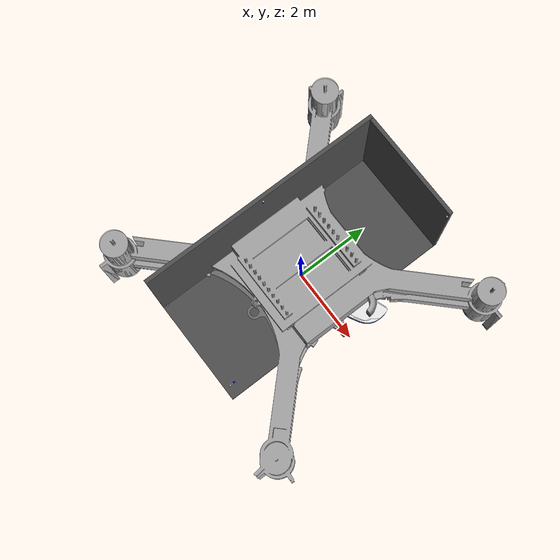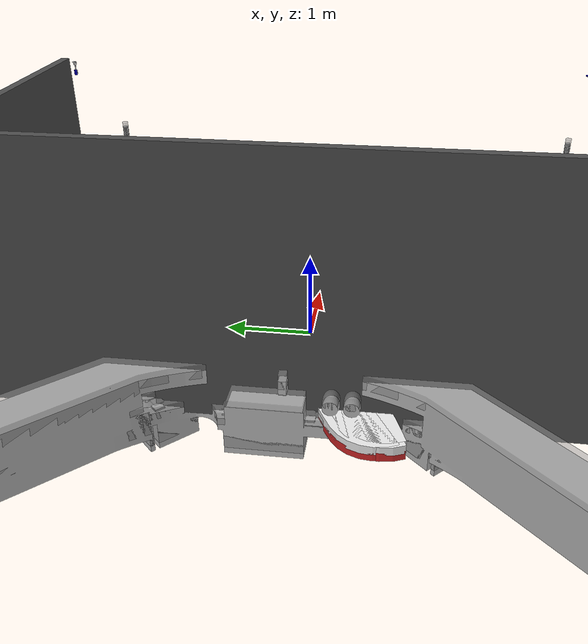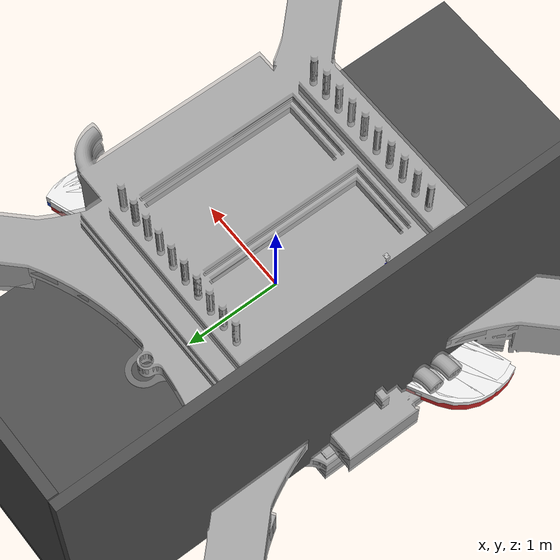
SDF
<?xml version="1.0" ?>
<sdf version="1.5">
  <world name="default">
    <!-- A global light source -->
    <include>
      <uri>model://sun</uri>
    </include>

    <!-- A ground plane -->

    <include>
      <uri>model://mur1</uri>
      <pose>0 0 -0.03 0 0 0</pose>
    </include>

    <!-- Set anchors for the room -->
    <!-- Noeud 0 -->
    <model name="noeud0">
      <pose>-1.4075 -3.145 0.15 0 0 -1.5707</pose>
      <include>
        <uri>model://anchor_stand</uri>
      </include>
    </model>

    <!-- Noeud 1 -->
    <model name="noeud1">
      <pose>-1.4375 3.155 0.15 0 0 3.1415</pose>
      <include>
        <uri>model://anchor_stand</uri>
      </include>
    </model>

    <!-- Noeud 2 -->
    <model name="noeud2">
      <pose>1.3875 0 0.15 0 0 0</pose>
      <include>
        <uri>model://anchor_stand</uri>
      </include>
    </model>

    <!-- Noeud 3 -->
    <model name="noeud3">
      <pose>1.5025 -3.145 2.76 -1.57 1.57 0</pose>
      <include>
        <uri>model://anchor_stand</uri>
      </include>
    </model>

    <!-- Noeud 4 -->
    <model name="noeud4">
      <pose>-1.41 -0.005 2.765 3.1415 0 -3.1415</pose>
      <include>
        <uri>model://anchor_stand</uri>
      </include>
    </model>

    <!-- Noeud 5 -->
    <model name="noeud5">
      <pose>1.4525 3.095 2.765 -3.1415 0 0</pose>
      <include>
        <uri>model://anchor_stand</uri>
      </include>
    </model>

    <!-- Add the crazylfies and the ghost -->
    <include>
      <pose>-1.51 0 1.35 0 1.57 0</pose>
      <uri>model://mur1</uri>
    </include>

    <include>
      <pose>0 3.2 1.35 1.57 0 0</pose>
      <uri>model://mur2</uri>
    </include>

    <include>
      <pose>0 0 0.03 0 0 0</pose>
      <uri>model://crazyflie_ghost1</uri>
    </include>

    <include>
      <pose>0 0 0.1 0 0 0</pose>
      <uri>model://crazyflie_ghost2</uri>
    </include>

    <physics name='default_physics' default='0' type='ode'>
      <gravity>0 0 -9.8066</gravity>
      <ode>
        <solver>
          <type>quick</type>
          <iters>1000</iters>
          <sor>1.3</sor>
          <use_dynamic_moi_rescaling>0</use_dynamic_moi_rescaling>
        </solver>
        <constraints>
          <cfm>0</cfm>
          <erp>0.2</erp>
          <contact_max_correcting_vel>100</contact_max_correcting_vel>
          <contact_surface_layer>0.001</contact_surface_layer>
        </constraints>
      </ode>
      <max_step_size>0.01</max_step_size>
      <real_time_factor>1</real_time_factor>
      <real_time_update_rate>100</real_time_update_rate>
      <magnetic_field>6.0e-6 2.3e-5 -4.2e-5</magnetic_field>
    </physics>
    <gui fullscreen='0'>
      <camera name='user_camera'>
        <pose>-1.489541 -7.484700 2.525153 0 0.207999 1.273996</pose>
      </camera>
    </gui>
  </world>
</sdf>

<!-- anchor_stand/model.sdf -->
<sdf version="1.5">
  <model name="anchor_stand">
    <static>true</static>
    <link name="link">
      <collision name="collision">
        <geometry>
          <box>
            <size>0.02 0.02 0.19</size>
          </box>
        </geometry>
      </collision>
      <visual name="visual">
        <geometry>
          <mesh>
            <uri>model://anchor_stand/meshes/anchor_stand.dae</uri>
          </mesh>
        </geometry>
      </visual>
    </link>
  </model>
</sdf>

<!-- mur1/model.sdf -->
<sdf version="1.5">
  <model name="mur1">
    <static>true</static>
    <link name="link">
      <collision name="collision">
        <geometry>
          <box>
            <size>2.9 6.5 0.1</size>
          </box>
        </geometry>
      </collision>
      <visual name="visual">
        <cast_shadows>false</cast_shadows>
        <geometry>
          <box>
            <size>2.9 6.5 0.1</size>
          </box>
        </geometry>
        <material>
          <script>
            <uri>model://asphalt_plane/materials/scripts</uri>
            <uri>model://asphalt_plane/materials/textures</uri>
            <name>vrc/asphalt</name>
          </script>
        </material>
      </visual>
    </link>
  </model>
</sdf>

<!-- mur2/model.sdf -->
<sdf version="1.5">
  <model name="mur2">
    <static>true</static>
    <link name="link">
      <collision name="collision">
        <geometry>
          <box>
            <size>2.9 2.9 0.1</size>
          </box>
        </geometry>
      </collision>
      <visual name="visual">
        <cast_shadows>false</cast_shadows>
        <geometry>
          <box>
            <size>2.9 2.9 0.1</size>
          </box>
        </geometry>
        <material>
          <script>
            <uri>model://asphalt_plane/materials/scripts</uri>
            <uri>model://asphalt_plane/materials/textures</uri>
            <name>vrc/asphalt</name>
          </script>
        </material>
      </visual>
    </link>
  </model>
</sdf>

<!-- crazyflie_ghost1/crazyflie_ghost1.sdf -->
<sdf version='1.6'>
  <model name='crazyflie_ghost1'>
    <link name='base_link'>
      <pose frame=''>0 0 0 0 -0 0</pose>
      <inertial>
        <pose frame=''>0 0 0 0 -0 0</pose>
        <mass>0.025</mass>
        <inertia>
          <ixx>1.65717e-05</ixx>
          <ixy>8.30806e-07</ixy>
          <ixz>7.18277e-07</ixz>
          <iyy>1.66556e-05</iyy>
          <iyz>1.8002e-06</iyz>
          <izz>2.92617e-05</izz>
        </inertia>
      </inertial>
      <collision name='base_link_inertia_collision'>
        <pose frame=''>0 0 0 0 -0 0</pose>
        <geometry>
          <box>
            <size>0.07 0.07 0.025</size>
          </box>
        </geometry>
        <surface>
          <contact>
            <ode>
              <min_depth>0.001</min_depth>
              <max_vel>0</max_vel>
            </ode>
          </contact>
          <friction>
            <ode/>
          </friction>
        </surface>
      </collision>
      <visual name='base_link_inertia_visual'>
        <pose frame=''>0 0 0 0 -0 0</pose>
        <geometry>
          <mesh>
            <scale>1 1 1</scale>
            <uri>/home/franck/catkin_ws/src/sim_cf/crazyflie_gazebo/models/rotors_description/meshes/crazyflie.dae</uri>
          </mesh>
        </geometry>
        <material>
          <script>
            <uri>__default__</uri>
            <name>__default__</name>
          </script>
        </material>
      </visual>
      <gravity>1</gravity>
      <velocity_decay/>
      <self_collide>0</self_collide>
    </link>
    <link name='rotor_0'>
      <pose frame=''>0.032527 -0.032527 0.0125 0 -0 0</pose>
      <inertial>
        <pose frame=''>0 0 0 0 -0 0</pose>
        <mass>0.00075</mass>
        <inertia>
          <ixx>1.61875e-07</ixx>
          <ixy>0</ixy>
          <ixz>0</ixz>
          <iyy>8.86375e-06</iyy>
          <iyz>0</iyz>
          <izz>9.01687e-06</izz>
        </inertia>
      </inertial>
      <visual name='rotor_0_visual'>
        <pose frame=''>0 0 0 0 -0 0</pose>
        <geometry>
          <mesh>
            <scale>1 1 1</scale>
            <uri>/home/franck/catkin_ws/src/sim_cf/crazyflie_gazebo/models/rotors_description/meshes/crazyflie_prop.dae</uri>
          </mesh>
        </geometry>
        <material>
          <script>
            <name>Gazebo/Blue</name>
            <uri>file://media/materials/scripts/gazebo.material</uri>
          </script>
        </material>
      </visual>
      <gravity>1</gravity>
      <velocity_decay/>
      <self_collide>0</self_collide>
    </link>
    <joint name='rotor_0_joint' type='revolute'>
      <child>rotor_0</child>
      <parent>base_link</parent>
      <axis>
        <xyz>0 0 1</xyz>
        <limit>
          <lower>-1e+16</lower>
          <upper>1e+16</upper>
        </limit>
        <dynamics>
          <spring_reference>0</spring_reference>
          <spring_stiffness>0</spring_stiffness>
        </dynamics>
        <use_parent_model_frame>1</use_parent_model_frame>
      </axis>
    </joint>
    <link name='rotor_1'>
      <pose frame=''>-0.032527 -0.032527 0.0125 0 -0 0</pose>
      <inertial>
        <pose frame=''>0 0 0 0 -0 0</pose>
        <mass>0.00075</mass>
        <inertia>
          <ixx>1.61875e-07</ixx>
          <ixy>0</ixy>
          <ixz>0</ixz>
          <iyy>8.86375e-06</iyy>
          <iyz>0</iyz>
          <izz>9.01687e-06</izz>
        </inertia>
      </inertial>
      <visual name='rotor_1_visual'>
        <pose frame=''>0 0 0 0 -0 0</pose>
        <geometry>
          <mesh>
            <scale>1 1 1</scale>
            <uri>/home/franck/catkin_ws/src/sim_cf/crazyflie_gazebo/models/rotors_description/meshes/crazyflie_prop.dae</uri>
          </mesh>
        </geometry>
        <material>
          <script>
            <name>Gazebo/Red</name>
            <uri>file://media/materials/scripts/gazebo.material</uri>
          </script>
        </material>
      </visual>
      <gravity>1</gravity>
      <velocity_decay/>
      <self_collide>0</self_collide>
    </link>
    <joint name='rotor_1_joint' type='revolute'>
      <child>rotor_1</child>
      <parent>base_link</parent>
      <axis>
        <xyz>0 0 1</xyz>
        <limit>
          <lower>-1e+16</lower>
          <upper>1e+16</upper>
        </limit>
        <dynamics>
          <spring_reference>0</spring_reference>
          <spring_stiffness>0</spring_stiffness>
        </dynamics>
        <use_parent_model_frame>1</use_parent_model_frame>
      </axis>
    </joint>
    <link name='rotor_2'>
      <pose frame=''>-0.032527 0.032527 0.0125 0 -0 0</pose>
      <inertial>
        <pose frame=''>0 0 0 0 -0 0</pose>
        <mass>0.00075</mass>
        <inertia>
          <ixx>1.61875e-07</ixx>
          <ixy>0</ixy>
          <ixz>0</ixz>
          <iyy>8.86375e-06</iyy>
          <iyz>0</iyz>
          <izz>9.01687e-06</izz>
        </inertia>
      </inertial>
      <visual name='rotor_2_visual'>
        <pose frame=''>0 0 0 0 -0 0</pose>
        <geometry>
          <mesh>
            <scale>1 1 1</scale>
            <uri>/home/franck/catkin_ws/src/sim_cf/crazyflie_gazebo/models/rotors_description/meshes/crazyflie_prop.dae</uri>
          </mesh>
        </geometry>
        <material>
          <script>
            <name>Gazebo/Red</name>
            <uri>file://media/materials/scripts/gazebo.material</uri>
          </script>
        </material>
      </visual>
      <gravity>1</gravity>
      <velocity_decay/>
      <self_collide>0</self_collide>
    </link>
    <joint name='rotor_2_joint' type='revolute'>
      <child>rotor_2</child>
      <parent>base_link</parent>
      <axis>
        <xyz>0 0 1</xyz>
        <limit>
          <lower>-1e+16</lower>
          <upper>1e+16</upper>
        </limit>
        <dynamics>
          <spring_reference>0</spring_reference>
          <spring_stiffness>0</spring_stiffness>
        </dynamics>
        <use_parent_model_frame>1</use_parent_model_frame>
      </axis>
    </joint>
    <link name='rotor_3'>
      <pose frame=''>0.032527 0.032527 0.0125 0 -0 0</pose>
      <inertial>
        <pose frame=''>0 0 0 0 -0 0</pose>
        <mass>0.00075</mass>
        <inertia>
          <ixx>1.61875e-07</ixx>
          <ixy>0</ixy>
          <ixz>0</ixz>
          <iyy>8.86375e-06</iyy>
          <iyz>0</iyz>
          <izz>9.01687e-06</izz>
        </inertia>
      </inertial>
      <visual name='rotor_3_visual'>
        <pose frame=''>0 0 0 0 -0 0</pose>
        <geometry>
          <mesh>
            <scale>1 1 1</scale>
            <uri>/home/franck/catkin_ws/src/sim_cf/crazyflie_gazebo/models/rotors_description/meshes/crazyflie_prop.dae</uri>
          </mesh>
        </geometry>
        <material>
          <script>
            <name>Gazebo/Blue</name>
            <uri>file://media/materials/scripts/gazebo.material</uri>
          </script>
        </material>
      </visual>
      <gravity>1</gravity>
      <velocity_decay/>
      <self_collide>0</self_collide>
    </link>
    <joint name='rotor_3_joint' type='revolute'>
      <child>rotor_3</child>
      <parent>base_link</parent>
      <axis>
        <xyz>0 0 1</xyz>
        <limit>
          <lower>-1e+16</lower>
          <upper>1e+16</upper>
        </limit>
        <dynamics>
          <spring_reference>0</spring_reference>
          <spring_stiffness>0</spring_stiffness>
        </dynamics>
        <use_parent_model_frame>1</use_parent_model_frame>
      </axis>
    </joint>
    <plugin name='front_right_motor_model' filename='librotors_gazebo_motor_model.so'>
      <robotNamespace>/</robotNamespace>
      <jointName>rotor_0_joint</jointName>
      <linkName>rotor_0</linkName>
      <turningDirection>ccw</turningDirection>
      <timeConstantUp>0.0125</timeConstantUp>
      <timeConstantDown>0.025</timeConstantDown>
      <maxRotVelocity>3052</maxRotVelocity>
      <motorConstant>0</motorConstant>
      <momentConstant>0</momentConstant>
      <commandSubTopic>/gazebo/command/motor_speed</commandSubTopic>
      <motorNumber>1</motorNumber>
      <rotorDragCoefficient>0</rotorDragCoefficient>
      <rollingMomentCoefficient>0</rollingMomentCoefficient>
      <motorSpeedPubTopic>/motor_speed/1</motorSpeedPubTopic>
      <rotorVelocitySlowdownSim>10</rotorVelocitySlowdownSim>
    </plugin>
    <plugin name='back_left_motor_model' filename='librotors_gazebo_motor_model.so'>
      <robotNamespace>/</robotNamespace>
      <jointName>rotor_2_joint</jointName>
      <linkName>rotor_2</linkName>
      <turningDirection>ccw</turningDirection>
      <timeConstantUp>0.0125</timeConstantUp>
      <timeConstantDown>0.025</timeConstantDown>
      <maxRotVelocity>3052</maxRotVelocity>
      <motorConstant>0</motorConstant>
      <momentConstant>0</momentConstant>
      <commandSubTopic>/gazebo/command/motor_speed</commandSubTopic>
      <motorNumber>1</motorNumber>
      <rotorDragCoefficient>0</rotorDragCoefficient>
      <rollingMomentCoefficient>0</rollingMomentCoefficient>
      <motorSpeedPubTopic>/motor_speed/1</motorSpeedPubTopic>
      <rotorVelocitySlowdownSim>10</rotorVelocitySlowdownSim>
    </plugin>
    <plugin name='front_left_motor_model' filename='librotors_gazebo_motor_model.so'>
      <robotNamespace>/</robotNamespace>
      <jointName>rotor_3_joint</jointName>
      <linkName>rotor_3</linkName>
      <turningDirection>cw</turningDirection>
      <timeConstantUp>0.0125</timeConstantUp>
      <timeConstantDown>0.025</timeConstantDown>
      <maxRotVelocity>3052</maxRotVelocity>
      <motorConstant>0</motorConstant>
      <momentConstant>0</momentConstant>
      <commandSubTopic>/gazebo/command/motor_speed</commandSubTopic>
      <motorNumber>1</motorNumber>
      <rotorDragCoefficient>0</rotorDragCoefficient>
      <rollingMomentCoefficient>0</rollingMomentCoefficient>
      <motorSpeedPubTopic>/motor_speed/1</motorSpeedPubTopic>
      <rotorVelocitySlowdownSim>10</rotorVelocitySlowdownSim>
    </plugin>
    <plugin name='back_right_motor_model' filename='librotors_gazebo_motor_model.so'>
      <robotNamespace>/</robotNamespace>
      <jointName>rotor_1_joint</jointName>
      <linkName>rotor_1</linkName>
      <turningDirection>cw</turningDirection>
      <timeConstantUp>0.0125</timeConstantUp>
      <timeConstantDown>0.025</timeConstantDown>
      <maxRotVelocity>3052</maxRotVelocity>
      <motorConstant>0</motorConstant>
      <momentConstant>0</momentConstant>
      <commandSubTopic>/gazebo/command/motor_speed</commandSubTopic>
      <motorNumber>1</motorNumber>
      <rotorDragCoefficient>0</rotorDragCoefficient>
      <rollingMomentCoefficient>0</rollingMomentCoefficient>
      <motorSpeedPubTopic>/motor_speed/1</motorSpeedPubTopic>
      <rotorVelocitySlowdownSim>10</rotorVelocitySlowdownSim>
    </plugin>
    <static>1</static>
    <plugin name='cfGhost_plugin' filename='libgazebo_cfGhost_plugin.so'>
      <poseTopic>/cf1/pose</poseTopic>
    </plugin>
  </model>
</sdf>

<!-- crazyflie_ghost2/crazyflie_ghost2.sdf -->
<sdf version='1.6'>
  <model name='crazyflie_ghost2'>
    <link name='base_link'>
      <pose frame=''>0 0 0 0 -0 0</pose>
      <inertial>
        <pose frame=''>0 0 0 0 -0 0</pose>
        <mass>0.025</mass>
        <inertia>
          <ixx>1.65717e-05</ixx>
          <ixy>8.30806e-07</ixy>
          <ixz>7.18277e-07</ixz>
          <iyy>1.66556e-05</iyy>
          <iyz>1.8002e-06</iyz>
          <izz>2.92617e-05</izz>
        </inertia>
      </inertial>
      <collision name='base_link_inertia_collision'>
        <pose frame=''>0 0 0 0 -0 0</pose>
        <geometry>
          <box>
            <size>0.07 0.07 0.025</size>
          </box>
        </geometry>
        <surface>
          <contact>
            <collide_without_contact>true</collide_without_contact>
          </contact>
        </surface>
      </collision>
      <visual name='base_link_inertia_visual'>
        <pose frame=''>0 0 0 0 -0 0</pose>
        <geometry>
          <mesh>
            <scale>1 1 1</scale>
            <uri>/home/franck/catkin_ws/src/sim_cf/crazyflie_gazebo/models/rotors_description/meshes/crazyflie.dae</uri>
          </mesh>
        </geometry>
        <material>
          <script>
            <name>Gazebo/GreyTransparent</name>
            <uri>file://media/materials/scripts/gazebo.material</uri>
          </script>
        </material>
      </visual>
      <gravity>0</gravity>
      <velocity_decay/>
      <self_collide>0</self_collide>
    </link>
    <link name='rotor_0'>
      <pose frame=''>0.032527 -0.032527 0.0125 0 -0 0</pose>
      <inertial>
        <pose frame=''>0 0 0 0 -0 0</pose>
        <mass>0.00075</mass>
        <inertia>
          <ixx>1.61875e-07</ixx>
          <ixy>0</ixy>
          <ixz>0</ixz>
          <iyy>8.86375e-06</iyy>
          <iyz>0</iyz>
          <izz>9.01687e-06</izz>
        </inertia>
      </inertial>
      <visual name='rotor_0_visual'>
        <pose frame=''>0 0 0 0 -0 0</pose>
        <geometry>
          <mesh>
            <scale>1 1 1</scale>
            <uri>/home/franck/catkin_ws/src/sim_cf/crazyflie_gazebo/models/rotors_description/meshes/crazyflie_prop.dae</uri>
          </mesh>
        </geometry>
        <material>
          <script>
            <name>Gazebo/White</name>
            <uri>file://media/materials/scripts/gazebo.material</uri>
          </script>
        </material>
      </visual>
      <gravity>0</gravity>
      <velocity_decay/>
      <self_collide>0</self_collide>
    </link>
    <joint name='rotor_0_joint' type='revolute'>
      <child>rotor_0</child>
      <parent>base_link</parent>
      <axis>
        <xyz>0 0 1</xyz>
        <limit>
          <lower>-1e+16</lower>
          <upper>1e+16</upper>
        </limit>
        <dynamics>
          <spring_reference>0</spring_reference>
          <spring_stiffness>0</spring_stiffness>
        </dynamics>
        <use_parent_model_frame>1</use_parent_model_frame>
      </axis>
    </joint>
    <link name='rotor_1'>
      <pose frame=''>-0.032527 -0.032527 0.0125 0 -0 0</pose>
      <inertial>
        <pose frame=''>0 0 0 0 -0 0</pose>
        <mass>0.00075</mass>
        <inertia>
          <ixx>1.61875e-07</ixx>
          <ixy>0</ixy>
          <ixz>0</ixz>
          <iyy>8.86375e-06</iyy>
          <iyz>0</iyz>
          <izz>9.01687e-06</izz>
        </inertia>
      </inertial>
      <visual name='rotor_1_visual'>
        <pose frame=''>0 0 0 0 -0 0</pose>
        <geometry>
          <mesh>
            <scale>1 1 1</scale>
            <uri>/home/franck/catkin_ws/src/sim_cf/crazyflie_gazebo/models/rotors_description/meshes/crazyflie_prop.dae</uri>
          </mesh>
        </geometry>
        <material>
          <script>
            <name>Gazebo/White</name>
            <uri>file://media/materials/scripts/gazebo.material</uri>
          </script>
        </material>
      </visual>
      <gravity>0</gravity>
      <velocity_decay/>
      <self_collide>0</self_collide>
    </link>
    <joint name='rotor_1_joint' type='revolute'>
      <child>rotor_1</child>
      <parent>base_link</parent>
      <axis>
        <xyz>0 0 1</xyz>
        <limit>
          <lower>-1e+16</lower>
          <upper>1e+16</upper>
        </limit>
        <dynamics>
          <spring_reference>0</spring_reference>
          <spring_stiffness>0</spring_stiffness>
        </dynamics>
        <use_parent_model_frame>1</use_parent_model_frame>
      </axis>
    </joint>
    <link name='rotor_2'>
      <pose frame=''>-0.032527 0.032527 0.0125 0 -0 0</pose>
      <inertial>
        <pose frame=''>0 0 0 0 -0 0</pose>
        <mass>0.00075</mass>
        <inertia>
          <ixx>1.61875e-07</ixx>
          <ixy>0</ixy>
          <ixz>0</ixz>
          <iyy>8.86375e-06</iyy>
          <iyz>0</iyz>
          <izz>9.01687e-06</izz>
        </inertia>
      </inertial>
      <visual name='rotor_2_visual'>
        <pose frame=''>0 0 0 0 -0 0</pose>
        <geometry>
          <mesh>
            <scale>1 1 1</scale>
            <uri>/home/franck/catkin_ws/src/sim_cf/crazyflie_gazebo/models/rotors_description/meshes/crazyflie_prop.dae</uri>
          </mesh>
        </geometry>
        <material>
          <script>
            <name>Gazebo/White</name>
            <uri>file://media/materials/scripts/gazebo.material</uri>
          </script>
        </material>
      </visual>
      <gravity>0</gravity>
      <velocity_decay/>
      <self_collide>0</self_collide>
    </link>
    <joint name='rotor_2_joint' type='revolute'>
      <child>rotor_2</child>
      <parent>base_link</parent>
      <axis>
        <xyz>0 0 1</xyz>
        <limit>
          <lower>-1e+16</lower>
          <upper>1e+16</upper>
        </limit>
        <dynamics>
          <spring_reference>0</spring_reference>
          <spring_stiffness>0</spring_stiffness>
        </dynamics>
        <use_parent_model_frame>1</use_parent_model_frame>
      </axis>
    </joint>
    <link name='rotor_3'>
      <pose frame=''>0.032527 0.032527 0.0125 0 -0 0</pose>
      <inertial>
        <pose frame=''>0 0 0 0 -0 0</pose>
        <mass>0.00075</mass>
        <inertia>
          <ixx>1.61875e-07</ixx>
          <ixy>0</ixy>
          <ixz>0</ixz>
          <iyy>8.86375e-06</iyy>
          <iyz>0</iyz>
          <izz>9.01687e-06</izz>
        </inertia>
      </inertial>
      <visual name='rotor_3_visual'>
        <pose frame=''>0 0 0 0 -0 0</pose>
        <geometry>
          <mesh>
            <scale>1 1 1</scale>
            <uri>/home/franck/catkin_ws/src/sim_cf/crazyflie_gazebo/models/rotors_description/meshes/crazyflie_prop.dae</uri>
          </mesh>
        </geometry>
        <material>
          <script>
            <name>Gazebo/White</name>
            <uri>file://media/materials/scripts/gazebo.material</uri>
          </script>
        </material>
      </visual>
      <gravity>0</gravity>
      <velocity_decay/>
      <self_collide>0</self_collide>
    </link>
    <joint name='rotor_3_joint' type='revolute'>
      <child>rotor_3</child>
      <parent>base_link</parent>
      <axis>
        <xyz>0 0 1</xyz>
        <limit>
          <lower>-1e+16</lower>
          <upper>1e+16</upper>
        </limit>
        <dynamics>
          <spring_reference>0</spring_reference>
          <spring_stiffness>0</spring_stiffness>
        </dynamics>
        <use_parent_model_frame>1</use_parent_model_frame>
      </axis>
    </joint>
    <plugin name='front_right_motor_model' filename='librotors_gazebo_motor_model.so'>
      <robotNamespace>/</robotNamespace>
      <jointName>rotor_0_joint</jointName>
      <linkName>rotor_0</linkName>
      <turningDirection>ccw</turningDirection>
      <timeConstantUp>0.0125</timeConstantUp>
      <timeConstantDown>0.025</timeConstantDown>
      <maxRotVelocity>3052</maxRotVelocity>
      <motorConstant>0</motorConstant>
      <momentConstant>0</momentConstant>
      <commandSubTopic>/gazebo/command/motor_speed</commandSubTopic>
      <motorNumber>1</motorNumber>
      <rotorDragCoefficient>0</rotorDragCoefficient>
      <rollingMomentCoefficient>0</rollingMomentCoefficient>
      <motorSpeedPubTopic>/motor_speed/1</motorSpeedPubTopic>
      <rotorVelocitySlowdownSim>10</rotorVelocitySlowdownSim>
    </plugin>
    <plugin name='back_left_motor_model' filename='librotors_gazebo_motor_model.so'>
      <robotNamespace>/</robotNamespace>
      <jointName>rotor_2_joint</jointName>
      <linkName>rotor_2</linkName>
      <turningDirection>ccw</turningDirection>
      <timeConstantUp>0.0125</timeConstantUp>
      <timeConstantDown>0.025</timeConstantDown>
      <maxRotVelocity>3052</maxRotVelocity>
      <motorConstant>0</motorConstant>
      <momentConstant>0</momentConstant>
      <commandSubTopic>/gazebo/command/motor_speed</commandSubTopic>
      <motorNumber>1</motorNumber>
      <rotorDragCoefficient>0</rotorDragCoefficient>
      <rollingMomentCoefficient>0</rollingMomentCoefficient>
      <motorSpeedPubTopic>/motor_speed/1</motorSpeedPubTopic>
      <rotorVelocitySlowdownSim>10</rotorVelocitySlowdownSim>
    </plugin>
    <plugin name='front_left_motor_model' filename='librotors_gazebo_motor_model.so'>
      <robotNamespace>/</robotNamespace>
      <jointName>rotor_3_joint</jointName>
      <linkName>rotor_3</linkName>
      <turningDirection>cw</turningDirection>
      <timeConstantUp>0.0125</timeConstantUp>
      <timeConstantDown>0.025</timeConstantDown>
      <maxRotVelocity>3052</maxRotVelocity>
      <motorConstant>0</motorConstant>
      <momentConstant>0</momentConstant>
      <commandSubTopic>/gazebo/command/motor_speed</commandSubTopic>
      <motorNumber>1</motorNumber>
      <rotorDragCoefficient>0</rotorDragCoefficient>
      <rollingMomentCoefficient>0</rollingMomentCoefficient>
      <motorSpeedPubTopic>/motor_speed/1</motorSpeedPubTopic>
      <rotorVelocitySlowdownSim>10</rotorVelocitySlowdownSim>
    </plugin>
    <plugin name='back_right_motor_model' filename='librotors_gazebo_motor_model.so'>
      <robotNamespace>/</robotNamespace>
      <jointName>rotor_1_joint</jointName>
      <linkName>rotor_1</linkName>
      <turningDirection>cw</turningDirection>
      <timeConstantUp>0.0125</timeConstantUp>
      <timeConstantDown>0.025</timeConstantDown>
      <maxRotVelocity>3052</maxRotVelocity>
      <motorConstant>0</motorConstant>
      <momentConstant>0</momentConstant>
      <commandSubTopic>/gazebo/command/motor_speed</commandSubTopic>
      <motorNumber>1</motorNumber>
      <rotorDragCoefficient>0</rotorDragCoefficient>
      <rollingMomentCoefficient>0</rollingMomentCoefficient>
      <motorSpeedPubTopic>/motor_speed/1</motorSpeedPubTopic>
      <rotorVelocitySlowdownSim>10</rotorVelocitySlowdownSim>
    </plugin>
    <static>1</static>
    <plugin name='cfGhost_plugin' filename='libgazebo_cfGhost_plugin.so'>
      <poseTopic>/cf1/pose</poseTopic>
    </plugin>
  </model>
</sdf>
